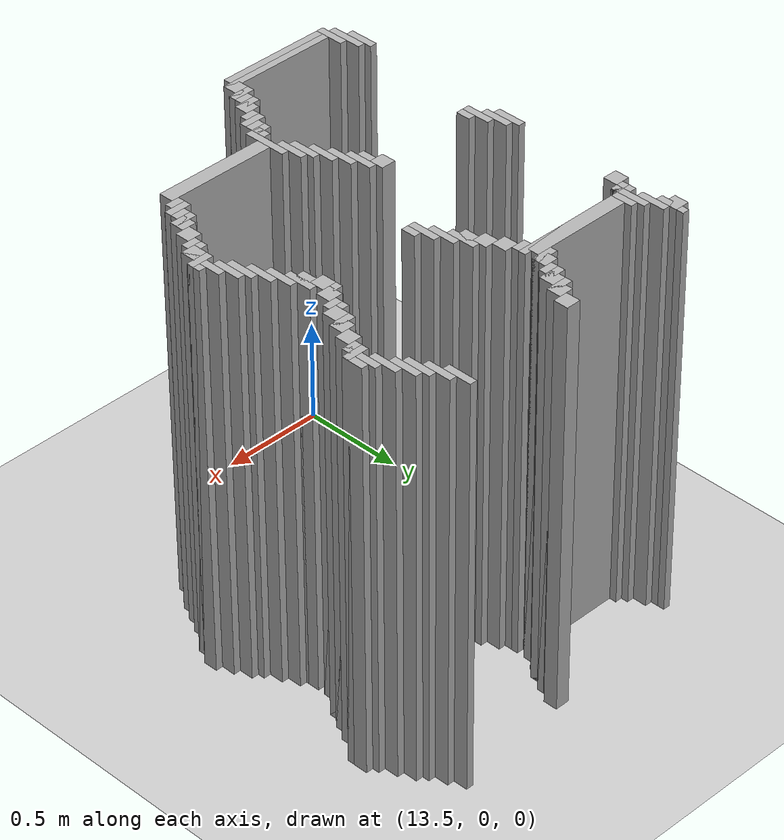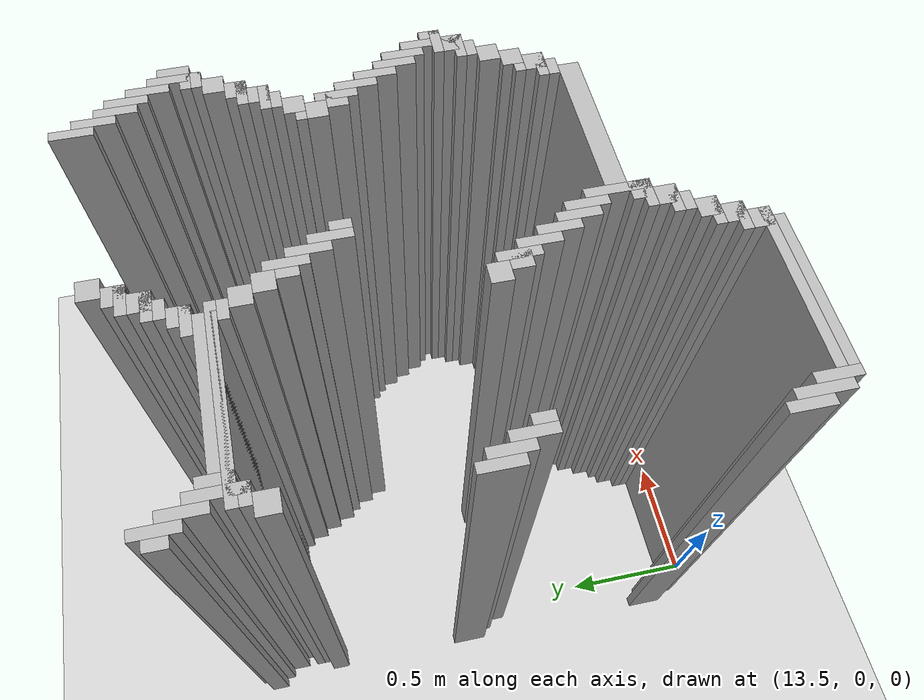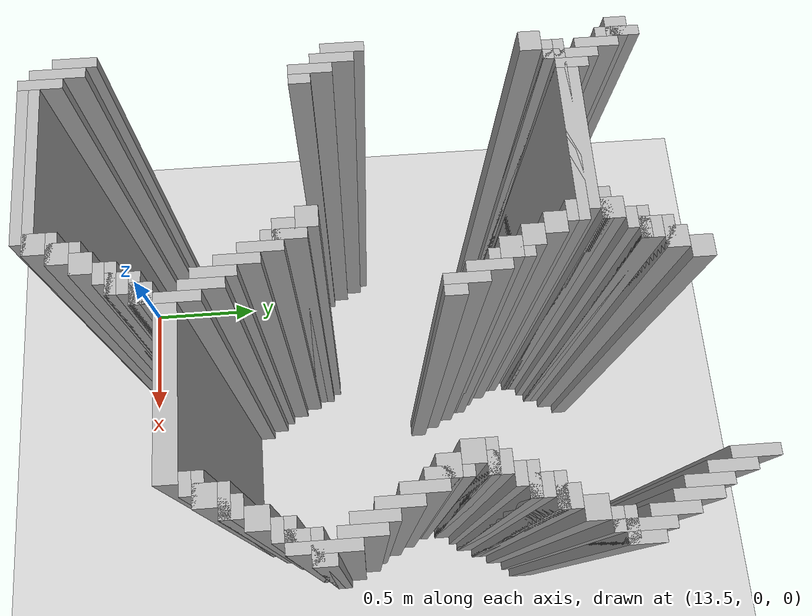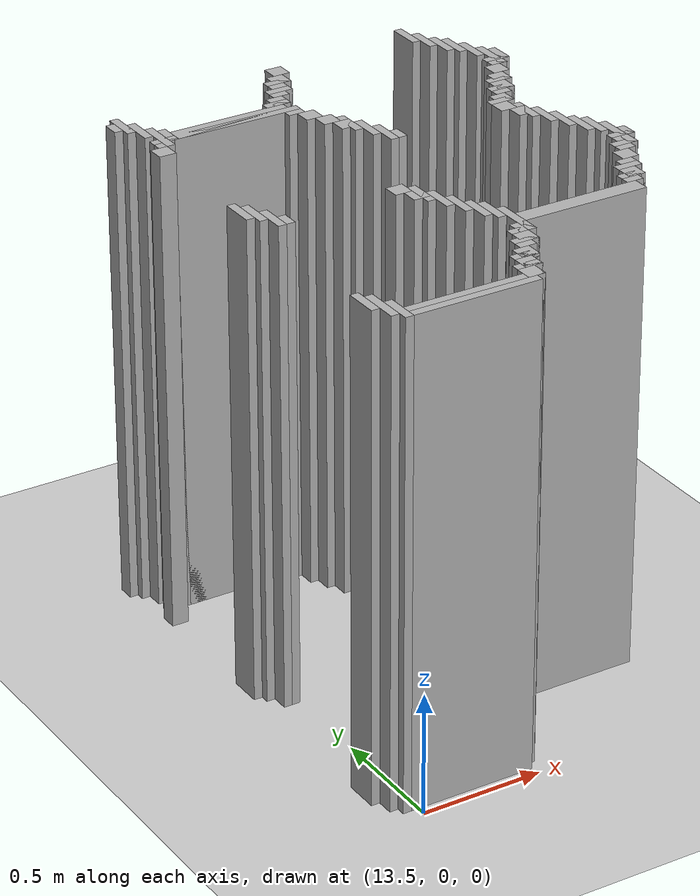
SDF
<sdf version="1.6">
 <world name="slam_world">
  <model name="ground_plane">
   <static>true</static>
   <link name="link">
    <collision name="collision">
     <geometry><plane><normal>0 0 1</normal><size>100 100</size></plane></geometry>
    </collision>
    <visual name="visual">
     <geometry><plane><normal>0 0 1</normal><size>100 100</size></plane></geometry>
     <material>
      <ambient>0.8 0.8 0.8 1</ambient>
      <diffuse>0.8 0.8 0.8 1</diffuse>
      <specular>0.8 0.8 0.8 1</specular>
     </material>
    </visual>
   </link>
  </model>
  <model name="wall_5177">
   <static>true</static>
   <pose>14.738979118329466 2.088167053364269 1.0 0 0 0</pose>
   <link name="link">
    <collision name="collision">
     <geometry><box><size>0.03480278422273782 0.13921113689095127 2.0</size></box></geometry>
    </collision>
    <visual name="visual">
     <geometry><box><size>0.03480278422273782 0.13921113689095127 2.0</size></box></geometry>
     <material><ambient>0.5 0.5 0.5 1</ambient><diffuse>0.7 0.7 0.7 1</diffuse></material>
    </visual>
   </link>
  </model>
  <model name="wall_5206">
   <static>true</static>
   <pose>14.129930394431554 2.053364269141531 1.0 0 0 0</pose>
   <link name="link">
    <collision name="collision">
     <geometry><box><size>0.06960556844547564 0.06960556844547564 2.0</size></box></geometry>
    </collision>
    <visual name="visual">
     <geometry><box><size>0.06960556844547564 0.06960556844547564 2.0</size></box></geometry>
     <material><ambient>0.5 0.5 0.5 1</ambient><diffuse>0.7 0.7 0.7 1</diffuse></material>
    </visual>
   </link>
  </model>
  <model name="wall_5207">
   <static>true</static>
   <pose>14.773781902552203 2.0185614849187936 1.0 0 0 0</pose>
   <link name="link">
    <collision name="collision">
     <geometry><box><size>0.03480278422273782 0.13921113689095127 2.0</size></box></geometry>
    </collision>
    <visual name="visual">
     <geometry><box><size>0.03480278422273782 0.13921113689095127 2.0</size></box></geometry>
     <material><ambient>0.5 0.5 0.5 1</ambient><diffuse>0.7 0.7 0.7 1</diffuse></material>
    </visual>
   </link>
  </model>
  <model name="wall_5221">
   <static>true</static>
   <pose>14.095127610208817 1.9837587006960555 1.0 0 0 0</pose>
   <link name="link">
    <collision name="collision">
     <geometry><box><size>0.06960556844547564 0.06960556844547564 2.0</size></box></geometry>
    </collision>
    <visual name="visual">
     <geometry><box><size>0.06960556844547564 0.06960556844547564 2.0</size></box></geometry>
     <material><ambient>0.5 0.5 0.5 1</ambient><diffuse>0.7 0.7 0.7 1</diffuse></material>
    </visual>
   </link>
  </model>
  <model name="wall_5222">
   <static>true</static>
   <pose>14.80858468677494 1.948955916473318 1.0 0 0 0</pose>
   <link name="link">
    <collision name="collision">
     <geometry><box><size>0.03480278422273782 0.13921113689095127 2.0</size></box></geometry>
    </collision>
    <visual name="visual">
     <geometry><box><size>0.03480278422273782 0.13921113689095127 2.0</size></box></geometry>
     <material><ambient>0.5 0.5 0.5 1</ambient><diffuse>0.7 0.7 0.7 1</diffuse></material>
    </visual>
   </link>
  </model>
  <model name="wall_5235">
   <static>true</static>
   <pose>13.38167053364269 1.91415313225058 1.0 0 0 0</pose>
   <link name="link">
    <collision name="collision">
     <geometry><box><size>0.03480278422273782 0.13921113689095127 2.0</size></box></geometry>
    </collision>
    <visual name="visual">
     <geometry><box><size>0.03480278422273782 0.13921113689095127 2.0</size></box></geometry>
     <material><ambient>0.5 0.5 0.5 1</ambient><diffuse>0.7 0.7 0.7 1</diffuse></material>
    </visual>
   </link>
  </model>
  <model name="wall_5236">
   <static>true</static>
   <pose>14.077726218097448 1.9663573085846866 1.0 0 0 0</pose>
   <link name="link">
    <collision name="collision">
     <geometry><box><size>0.10440835266821345 0.03480278422273782 2.0</size></box></geometry>
    </collision>
    <visual name="visual">
     <geometry><box><size>0.10440835266821345 0.03480278422273782 2.0</size></box></geometry>
     <material><ambient>0.5 0.5 0.5 1</ambient><diffuse>0.7 0.7 0.7 1</diffuse></material>
    </visual>
   </link>
  </model>
  <model name="wall_5237">
   <static>true</static>
   <pose>14.84338747099768 1.91415313225058 1.0 0 0 0</pose>
   <link name="link">
    <collision name="collision">
     <geometry><box><size>0.03480278422273782 0.13921113689095127 2.0</size></box></geometry>
    </collision>
    <visual name="visual">
     <geometry><box><size>0.03480278422273782 0.13921113689095127 2.0</size></box></geometry>
     <material><ambient>0.5 0.5 0.5 1</ambient><diffuse>0.7 0.7 0.7 1</diffuse></material>
    </visual>
   </link>
  </model>
  <model name="wall_5246">
   <static>true</static>
   <pose>13.364269141531322 1.91415313225058 1.0 0 0 0</pose>
   <link name="link">
    <collision name="collision">
     <geometry><box><size>0.06960556844547564 0.06960556844547564 2.0</size></box></geometry>
    </collision>
    <visual name="visual">
     <geometry><box><size>0.06960556844547564 0.06960556844547564 2.0</size></box></geometry>
     <material><ambient>0.5 0.5 0.5 1</ambient><diffuse>0.7 0.7 0.7 1</diffuse></material>
    </visual>
   </link>
  </model>
  <model name="wall_5247">
   <static>true</static>
   <pose>14.06032482598608 1.91415313225058 1.0 0 0 0</pose>
   <link name="link">
    <collision name="collision">
     <geometry><box><size>0.06960556844547564 0.06960556844547564 2.0</size></box></geometry>
    </collision>
    <visual name="visual">
     <geometry><box><size>0.06960556844547564 0.06960556844547564 2.0</size></box></geometry>
     <material><ambient>0.5 0.5 0.5 1</ambient><diffuse>0.7 0.7 0.7 1</diffuse></material>
    </visual>
   </link>
  </model>
  <model name="wall_5260">
   <static>true</static>
   <pose>13.416473317865428 1.8445475638051043 1.0 0 0 0</pose>
   <link name="link">
    <collision name="collision">
     <geometry><box><size>0.03480278422273782 0.13921113689095127 2.0</size></box></geometry>
    </collision>
    <visual name="visual">
     <geometry><box><size>0.03480278422273782 0.13921113689095127 2.0</size></box></geometry>
     <material><ambient>0.5 0.5 0.5 1</ambient><diffuse>0.7 0.7 0.7 1</diffuse></material>
    </visual>
   </link>
  </model>
  <model name="wall_5261">
   <static>true</static>
   <pose>14.042923433874709 1.896751740139211 1.0 0 0 0</pose>
   <link name="link">
    <collision name="collision">
     <geometry><box><size>0.10440835266821345 0.03480278422273782 2.0</size></box></geometry>
    </collision>
    <visual name="visual">
     <geometry><box><size>0.10440835266821345 0.03480278422273782 2.0</size></box></geometry>
     <material><ambient>0.5 0.5 0.5 1</ambient><diffuse>0.7 0.7 0.7 1</diffuse></material>
    </visual>
   </link>
  </model>
  <model name="wall_5262">
   <static>true</static>
   <pose>14.878190255220417 1.8445475638051043 1.0 0 0 0</pose>
   <link name="link">
    <collision name="collision">
     <geometry><box><size>0.03480278422273782 0.13921113689095127 2.0</size></box></geometry>
    </collision>
    <visual name="visual">
     <geometry><box><size>0.03480278422273782 0.13921113689095127 2.0</size></box></geometry>
     <material><ambient>0.5 0.5 0.5 1</ambient><diffuse>0.7 0.7 0.7 1</diffuse></material>
    </visual>
   </link>
  </model>
  <model name="wall_5271">
   <static>true</static>
   <pose>14.02552204176334 1.8619489559164732 1.0 0 0 0</pose>
   <link name="link">
    <collision name="collision">
     <geometry><box><size>0.06960556844547564 0.03480278422273782 2.0</size></box></geometry>
    </collision>
    <visual name="visual">
     <geometry><box><size>0.06960556844547564 0.03480278422273782 2.0</size></box></geometry>
     <material><ambient>0.5 0.5 0.5 1</ambient><diffuse>0.7 0.7 0.7 1</diffuse></material>
    </visual>
   </link>
  </model>
  <model name="wall_5284">
   <static>true</static>
   <pose>13.451276102088167 1.75754060324826 1.0 0 0 0</pose>
   <link name="link">
    <collision name="collision">
     <geometry><box><size>0.03480278422273782 0.17401392111368907 2.0</size></box></geometry>
    </collision>
    <visual name="visual">
     <geometry><box><size>0.03480278422273782 0.17401392111368907 2.0</size></box></geometry>
     <material><ambient>0.5 0.5 0.5 1</ambient><diffuse>0.7 0.7 0.7 1</diffuse></material>
    </visual>
   </link>
  </model>
  <model name="wall_5285">
   <static>true</static>
   <pose>13.990719257540603 1.8097447795823665 1.0 0 0 0</pose>
   <link name="link">
    <collision name="collision">
     <geometry><box><size>0.06960556844547564 0.06960556844547564 2.0</size></box></geometry>
    </collision>
    <visual name="visual">
     <geometry><box><size>0.06960556844547564 0.06960556844547564 2.0</size></box></geometry>
     <material><ambient>0.5 0.5 0.5 1</ambient><diffuse>0.7 0.7 0.7 1</diffuse></material>
    </visual>
   </link>
  </model>
  <model name="wall_5286">
   <static>true</static>
   <pose>14.912993039443155 1.75754060324826 1.0 0 0 0</pose>
   <link name="link">
    <collision name="collision">
     <geometry><box><size>0.03480278422273782 0.17401392111368907 2.0</size></box></geometry>
    </collision>
    <visual name="visual">
     <geometry><box><size>0.03480278422273782 0.17401392111368907 2.0</size></box></geometry>
     <material><ambient>0.5 0.5 0.5 1</ambient><diffuse>0.7 0.7 0.7 1</diffuse></material>
    </visual>
   </link>
  </model>
  <model name="wall_5299">
   <static>true</static>
   <pose>13.486078886310905 1.75754060324826 1.0 0 0 0</pose>
   <link name="link">
    <collision name="collision">
     <geometry><box><size>0.03480278422273782 0.10440835266821345 2.0</size></box></geometry>
    </collision>
    <visual name="visual">
     <geometry><box><size>0.03480278422273782 0.10440835266821345 2.0</size></box></geometry>
     <material><ambient>0.5 0.5 0.5 1</ambient><diffuse>0.7 0.7 0.7 1</diffuse></material>
    </visual>
   </link>
  </model>
  <model name="wall_5300">
   <static>true</static>
   <pose>13.973317865429234 1.7923433874709975 1.0 0 0 0</pose>
   <link name="link">
    <collision name="collision">
     <geometry><box><size>0.10440835266821345 0.03480278422273782 2.0</size></box></geometry>
    </collision>
    <visual name="visual">
     <geometry><box><size>0.10440835266821345 0.03480278422273782 2.0</size></box></geometry>
     <material><ambient>0.5 0.5 0.5 1</ambient><diffuse>0.7 0.7 0.7 1</diffuse></material>
    </visual>
   </link>
  </model>
  <model name="wall_5301">
   <static>true</static>
   <pose>14.947795823665892 1.75754060324826 1.0 0 0 0</pose>
   <link name="link">
    <collision name="collision">
     <geometry><box><size>0.03480278422273782 0.10440835266821345 2.0</size></box></geometry>
    </collision>
    <visual name="visual">
     <geometry><box><size>0.03480278422273782 0.10440835266821345 2.0</size></box></geometry>
     <material><ambient>0.5 0.5 0.5 1</ambient><diffuse>0.7 0.7 0.7 1</diffuse></material>
    </visual>
   </link>
  </model>
  <model name="wall_5313">
   <static>true</static>
   <pose>13.747099767981437 1.740139211136891 1.0 0 0 0</pose>
   <link name="link">
    <collision name="collision">
     <geometry><box><size>0.4872389791183295 0.06960556844547564 2.0</size></box></geometry>
    </collision>
    <visual name="visual">
     <geometry><box><size>0.4872389791183295 0.06960556844547564 2.0</size></box></geometry>
     <material><ambient>0.5 0.5 0.5 1</ambient><diffuse>0.7 0.7 0.7 1</diffuse></material>
    </visual>
   </link>
  </model>
  <model name="wall_5325">
   <static>true</static>
   <pose>13.7122969837587 1.722737819025522 1.0 0 0 0</pose>
   <link name="link">
    <collision name="collision">
     <geometry><box><size>0.6264501160092807 0.03480278422273782 2.0</size></box></geometry>
    </collision>
    <visual name="visual">
     <geometry><box><size>0.6264501160092807 0.03480278422273782 2.0</size></box></geometry>
     <material><ambient>0.5 0.5 0.5 1</ambient><diffuse>0.7 0.7 0.7 1</diffuse></material>
    </visual>
   </link>
  </model>
  <model name="wall_5326">
   <static>true</static>
   <pose>14.912993039443155 1.722737819025522 1.0 0 0 0</pose>
   <link name="link">
    <collision name="collision">
     <geometry><box><size>0.10440835266821345 0.03480278422273782 2.0</size></box></geometry>
    </collision>
    <visual name="visual">
     <geometry><box><size>0.10440835266821345 0.03480278422273782 2.0</size></box></geometry>
     <material><ambient>0.5 0.5 0.5 1</ambient><diffuse>0.7 0.7 0.7 1</diffuse></material>
    </visual>
   </link>
  </model>
  <model name="wall_5337">
   <static>true</static>
   <pose>13.433874709976797 1.6879350348027842 1.0 0 0 0</pose>
   <link name="link">
    <collision name="collision">
     <geometry><box><size>0.06960556844547564 0.03480278422273782 2.0</size></box></geometry>
    </collision>
    <visual name="visual">
     <geometry><box><size>0.06960556844547564 0.03480278422273782 2.0</size></box></geometry>
     <material><ambient>0.5 0.5 0.5 1</ambient><diffuse>0.7 0.7 0.7 1</diffuse></material>
    </visual>
   </link>
  </model>
  <model name="wall_5338">
   <static>true</static>
   <pose>13.990719257540603 1.6879350348027842 1.0 0 0 0</pose>
   <link name="link">
    <collision name="collision">
     <geometry><box><size>0.06960556844547564 0.03480278422273782 2.0</size></box></geometry>
    </collision>
    <visual name="visual">
     <geometry><box><size>0.06960556844547564 0.03480278422273782 2.0</size></box></geometry>
     <material><ambient>0.5 0.5 0.5 1</ambient><diffuse>0.7 0.7 0.7 1</diffuse></material>
    </visual>
   </link>
  </model>
  <model name="wall_5339">
   <static>true</static>
   <pose>14.895591647331786 1.6879350348027842 1.0 0 0 0</pose>
   <link name="link">
    <collision name="collision">
     <geometry><box><size>0.06960556844547564 0.03480278422273782 2.0</size></box></geometry>
    </collision>
    <visual name="visual">
     <geometry><box><size>0.06960556844547564 0.03480278422273782 2.0</size></box></geometry>
     <material><ambient>0.5 0.5 0.5 1</ambient><diffuse>0.7 0.7 0.7 1</diffuse></material>
    </visual>
   </link>
  </model>
  <model name="wall_5350">
   <static>true</static>
   <pose>13.39907192575406 1.6357308584686774 1.0 0 0 0</pose>
   <link name="link">
    <collision name="collision">
     <geometry><box><size>0.06960556844547564 0.06960556844547564 2.0</size></box></geometry>
    </collision>
    <visual name="visual">
     <geometry><box><size>0.06960556844547564 0.06960556844547564 2.0</size></box></geometry>
     <material><ambient>0.5 0.5 0.5 1</ambient><diffuse>0.7 0.7 0.7 1</diffuse></material>
    </visual>
   </link>
  </model>
  <model name="wall_5351">
   <static>true</static>
   <pose>14.02552204176334 1.6357308584686774 1.0 0 0 0</pose>
   <link name="link">
    <collision name="collision">
     <geometry><box><size>0.06960556844547564 0.06960556844547564 2.0</size></box></geometry>
    </collision>
    <visual name="visual">
     <geometry><box><size>0.06960556844547564 0.06960556844547564 2.0</size></box></geometry>
     <material><ambient>0.5 0.5 0.5 1</ambient><diffuse>0.7 0.7 0.7 1</diffuse></material>
    </visual>
   </link>
  </model>
  <model name="wall_5352">
   <static>true</static>
   <pose>14.860788863109049 1.6357308584686774 1.0 0 0 0</pose>
   <link name="link">
    <collision name="collision">
     <geometry><box><size>0.06960556844547564 0.06960556844547564 2.0</size></box></geometry>
    </collision>
    <visual name="visual">
     <geometry><box><size>0.06960556844547564 0.06960556844547564 2.0</size></box></geometry>
     <material><ambient>0.5 0.5 0.5 1</ambient><diffuse>0.7 0.7 0.7 1</diffuse></material>
    </visual>
   </link>
  </model>
  <model name="wall_5364">
   <static>true</static>
   <pose>14.06032482598608 1.5661252900232019 1.0 0 0 0</pose>
   <link name="link">
    <collision name="collision">
     <geometry><box><size>0.06960556844547564 0.06960556844547564 2.0</size></box></geometry>
    </collision>
    <visual name="visual">
     <geometry><box><size>0.06960556844547564 0.06960556844547564 2.0</size></box></geometry>
     <material><ambient>0.5 0.5 0.5 1</ambient><diffuse>0.7 0.7 0.7 1</diffuse></material>
    </visual>
   </link>
  </model>
  <model name="wall_5365">
   <static>true</static>
   <pose>14.825986078886311 1.5661252900232019 1.0 0 0 0</pose>
   <link name="link">
    <collision name="collision">
     <geometry><box><size>0.06960556844547564 0.06960556844547564 2.0</size></box></geometry>
    </collision>
    <visual name="visual">
     <geometry><box><size>0.06960556844547564 0.06960556844547564 2.0</size></box></geometry>
     <material><ambient>0.5 0.5 0.5 1</ambient><diffuse>0.7 0.7 0.7 1</diffuse></material>
    </visual>
   </link>
  </model>
  <model name="wall_5377">
   <static>true</static>
   <pose>14.112529002320185 1.4965197215777262 1.0 0 0 0</pose>
   <link name="link">
    <collision name="collision">
     <geometry><box><size>0.03480278422273782 0.13921113689095127 2.0</size></box></geometry>
    </collision>
    <visual name="visual">
     <geometry><box><size>0.03480278422273782 0.13921113689095127 2.0</size></box></geometry>
     <material><ambient>0.5 0.5 0.5 1</ambient><diffuse>0.7 0.7 0.7 1</diffuse></material>
    </visual>
   </link>
  </model>
  <model name="wall_5378">
   <static>true</static>
   <pose>14.80858468677494 1.548723897911833 1.0 0 0 0</pose>
   <link name="link">
    <collision name="collision">
     <geometry><box><size>0.10440835266821345 0.03480278422273782 2.0</size></box></geometry>
    </collision>
    <visual name="visual">
     <geometry><box><size>0.10440835266821345 0.03480278422273782 2.0</size></box></geometry>
     <material><ambient>0.5 0.5 0.5 1</ambient><diffuse>0.7 0.7 0.7 1</diffuse></material>
    </visual>
   </link>
  </model>
  <model name="wall_5386">
   <static>true</static>
   <pose>14.095127610208817 1.4965197215777262 1.0 0 0 0</pose>
   <link name="link">
    <collision name="collision">
     <geometry><box><size>0.06960556844547564 0.06960556844547564 2.0</size></box></geometry>
    </collision>
    <visual name="visual">
     <geometry><box><size>0.06960556844547564 0.06960556844547564 2.0</size></box></geometry>
     <material><ambient>0.5 0.5 0.5 1</ambient><diffuse>0.7 0.7 0.7 1</diffuse></material>
    </visual>
   </link>
  </model>
  <model name="wall_5387">
   <static>true</static>
   <pose>14.791183294663572 1.4965197215777262 1.0 0 0 0</pose>
   <link name="link">
    <collision name="collision">
     <geometry><box><size>0.06960556844547564 0.06960556844547564 2.0</size></box></geometry>
    </collision>
    <visual name="visual">
     <geometry><box><size>0.06960556844547564 0.06960556844547564 2.0</size></box></geometry>
     <material><ambient>0.5 0.5 0.5 1</ambient><diffuse>0.7 0.7 0.7 1</diffuse></material>
    </visual>
   </link>
  </model>
  <model name="wall_5399">
   <static>true</static>
   <pose>14.147331786542923 1.4269141531322505 1.0 0 0 0</pose>
   <link name="link">
    <collision name="collision">
     <geometry><box><size>0.03480278422273782 0.13921113689095127 2.0</size></box></geometry>
    </collision>
    <visual name="visual">
     <geometry><box><size>0.03480278422273782 0.13921113689095127 2.0</size></box></geometry>
     <material><ambient>0.5 0.5 0.5 1</ambient><diffuse>0.7 0.7 0.7 1</diffuse></material>
    </visual>
   </link>
  </model>
  <model name="wall_5400">
   <static>true</static>
   <pose>14.773781902552203 1.4791183294663572 1.0 0 0 0</pose>
   <link name="link">
    <collision name="collision">
     <geometry><box><size>0.10440835266821345 0.03480278422273782 2.0</size></box></geometry>
    </collision>
    <visual name="visual">
     <geometry><box><size>0.10440835266821345 0.03480278422273782 2.0</size></box></geometry>
     <material><ambient>0.5 0.5 0.5 1</ambient><diffuse>0.7 0.7 0.7 1</diffuse></material>
    </visual>
   </link>
  </model>
  <model name="wall_5407">
   <static>true</static>
   <pose>14.756380510440835 1.4443155452436194 1.0 0 0 0</pose>
   <link name="link">
    <collision name="collision">
     <geometry><box><size>0.06960556844547564 0.03480278422273782 2.0</size></box></geometry>
    </collision>
    <visual name="visual">
     <geometry><box><size>0.06960556844547564 0.03480278422273782 2.0</size></box></geometry>
     <material><ambient>0.5 0.5 0.5 1</ambient><diffuse>0.7 0.7 0.7 1</diffuse></material>
    </visual>
   </link>
  </model>
  <model name="wall_5419">
   <static>true</static>
   <pose>14.18213457076566 1.357308584686775 1.0 0 0 0</pose>
   <link name="link">
    <collision name="collision">
     <geometry><box><size>0.03480278422273782 0.13921113689095127 2.0</size></box></geometry>
    </collision>
    <visual name="visual">
     <geometry><box><size>0.03480278422273782 0.13921113689095127 2.0</size></box></geometry>
     <material><ambient>0.5 0.5 0.5 1</ambient><diffuse>0.7 0.7 0.7 1</diffuse></material>
    </visual>
   </link>
  </model>
  <model name="wall_5420">
   <static>true</static>
   <pose>14.721577726218097 1.3921113689095126 1.0 0 0 0</pose>
   <link name="link">
    <collision name="collision">
     <geometry><box><size>0.06960556844547564 0.06960556844547564 2.0</size></box></geometry>
    </collision>
    <visual name="visual">
     <geometry><box><size>0.06960556844547564 0.06960556844547564 2.0</size></box></geometry>
     <material><ambient>0.5 0.5 0.5 1</ambient><diffuse>0.7 0.7 0.7 1</diffuse></material>
    </visual>
   </link>
  </model>
  <model name="wall_5430">
   <static>true</static>
   <pose>14.704176334106728 1.3747099767981439 1.0 0 0 0</pose>
   <link name="link">
    <collision name="collision">
     <geometry><box><size>0.10440835266821345 0.03480278422273782 2.0</size></box></geometry>
    </collision>
    <visual name="visual">
     <geometry><box><size>0.10440835266821345 0.03480278422273782 2.0</size></box></geometry>
     <material><ambient>0.5 0.5 0.5 1</ambient><diffuse>0.7 0.7 0.7 1</diffuse></material>
    </visual>
   </link>
  </model>
  <model name="wall_5441">
   <static>true</static>
   <pose>14.2169373549884 1.322505800464037 1.0 0 0 0</pose>
   <link name="link">
    <collision name="collision">
     <geometry><box><size>0.03480278422273782 0.06960556844547564 2.0</size></box></geometry>
    </collision>
    <visual name="visual">
     <geometry><box><size>0.03480278422273782 0.06960556844547564 2.0</size></box></geometry>
     <material><ambient>0.5 0.5 0.5 1</ambient><diffuse>0.7 0.7 0.7 1</diffuse></material>
    </visual>
   </link>
  </model>
  <model name="wall_5442">
   <static>true</static>
   <pose>14.68677494199536 1.322505800464037 1.0 0 0 0</pose>
   <link name="link">
    <collision name="collision">
     <geometry><box><size>0.06960556844547564 0.06960556844547564 2.0</size></box></geometry>
    </collision>
    <visual name="visual">
     <geometry><box><size>0.06960556844547564 0.06960556844547564 2.0</size></box></geometry>
     <material><ambient>0.5 0.5 0.5 1</ambient><diffuse>0.7 0.7 0.7 1</diffuse></material>
    </visual>
   </link>
  </model>
  <model name="wall_5454">
   <static>true</static>
   <pose>14.738979118329466 1.2529002320185614 1.0 0 0 0</pose>
   <link name="link">
    <collision name="collision">
     <geometry><box><size>0.03480278422273782 0.13921113689095127 2.0</size></box></geometry>
    </collision>
    <visual name="visual">
     <geometry><box><size>0.03480278422273782 0.13921113689095127 2.0</size></box></geometry>
     <material><ambient>0.5 0.5 0.5 1</ambient><diffuse>0.7 0.7 0.7 1</diffuse></material>
    </visual>
   </link>
  </model>
  <model name="wall_5469">
   <static>true</static>
   <pose>14.721577726218097 1.2529002320185614 1.0 0 0 0</pose>
   <link name="link">
    <collision name="collision">
     <geometry><box><size>0.06960556844547564 0.06960556844547564 2.0</size></box></geometry>
    </collision>
    <visual name="visual">
     <geometry><box><size>0.06960556844547564 0.06960556844547564 2.0</size></box></geometry>
     <material><ambient>0.5 0.5 0.5 1</ambient><diffuse>0.7 0.7 0.7 1</diffuse></material>
    </visual>
   </link>
  </model>
  <model name="wall_5484">
   <static>true</static>
   <pose>14.773781902552203 1.1832946635730859 1.0 0 0 0</pose>
   <link name="link">
    <collision name="collision">
     <geometry><box><size>0.03480278422273782 0.13921113689095127 2.0</size></box></geometry>
    </collision>
    <visual name="visual">
     <geometry><box><size>0.03480278422273782 0.13921113689095127 2.0</size></box></geometry>
     <material><ambient>0.5 0.5 0.5 1</ambient><diffuse>0.7 0.7 0.7 1</diffuse></material>
    </visual>
   </link>
  </model>
  <model name="wall_5511">
   <static>true</static>
   <pose>14.80858468677494 1.1136890951276102 1.0 0 0 0</pose>
   <link name="link">
    <collision name="collision">
     <geometry><box><size>0.03480278422273782 0.13921113689095127 2.0</size></box></geometry>
    </collision>
    <visual name="visual">
     <geometry><box><size>0.03480278422273782 0.13921113689095127 2.0</size></box></geometry>
     <material><ambient>0.5 0.5 0.5 1</ambient><diffuse>0.7 0.7 0.7 1</diffuse></material>
    </visual>
   </link>
  </model>
  <model name="wall_5525">
   <static>true</static>
   <pose>13.38167053364269 1.0440835266821344 1.0 0 0 0</pose>
   <link name="link">
    <collision name="collision">
     <geometry><box><size>0.03480278422273782 0.13921113689095127 2.0</size></box></geometry>
    </collision>
    <visual name="visual">
     <geometry><box><size>0.03480278422273782 0.13921113689095127 2.0</size></box></geometry>
     <material><ambient>0.5 0.5 0.5 1</ambient><diffuse>0.7 0.7 0.7 1</diffuse></material>
    </visual>
   </link>
  </model>
  <model name="wall_5526">
   <static>true</static>
   <pose>14.84338747099768 1.0440835266821344 1.0 0 0 0</pose>
   <link name="link">
    <collision name="collision">
     <geometry><box><size>0.03480278422273782 0.13921113689095127 2.0</size></box></geometry>
    </collision>
    <visual name="visual">
     <geometry><box><size>0.03480278422273782 0.13921113689095127 2.0</size></box></geometry>
     <material><ambient>0.5 0.5 0.5 1</ambient><diffuse>0.7 0.7 0.7 1</diffuse></material>
    </visual>
   </link>
  </model>
  <model name="wall_5540">
   <static>true</static>
   <pose>13.416473317865428 1.0092807424593968 1.0 0 0 0</pose>
   <link name="link">
    <collision name="collision">
     <geometry><box><size>0.03480278422273782 0.13921113689095127 2.0</size></box></geometry>
    </collision>
    <visual name="visual">
     <geometry><box><size>0.03480278422273782 0.13921113689095127 2.0</size></box></geometry>
     <material><ambient>0.5 0.5 0.5 1</ambient><diffuse>0.7 0.7 0.7 1</diffuse></material>
    </visual>
   </link>
  </model>
  <model name="wall_5541">
   <static>true</static>
   <pose>14.878190255220417 1.0092807424593968 1.0 0 0 0</pose>
   <link name="link">
    <collision name="collision">
     <geometry><box><size>0.03480278422273782 0.13921113689095127 2.0</size></box></geometry>
    </collision>
    <visual name="visual">
     <geometry><box><size>0.03480278422273782 0.13921113689095127 2.0</size></box></geometry>
     <material><ambient>0.5 0.5 0.5 1</ambient><diffuse>0.7 0.7 0.7 1</diffuse></material>
    </visual>
   </link>
  </model>
  <model name="wall_5564">
   <static>true</static>
   <pose>13.451276102088167 0.9396751740139211 1.0 0 0 0</pose>
   <link name="link">
    <collision name="collision">
     <geometry><box><size>0.03480278422273782 0.13921113689095127 2.0</size></box></geometry>
    </collision>
    <visual name="visual">
     <geometry><box><size>0.03480278422273782 0.13921113689095127 2.0</size></box></geometry>
     <material><ambient>0.5 0.5 0.5 1</ambient><diffuse>0.7 0.7 0.7 1</diffuse></material>
    </visual>
   </link>
  </model>
  <model name="wall_5565">
   <static>true</static>
   <pose>14.912993039443155 0.9048723897911832 1.0 0 0 0</pose>
   <link name="link">
    <collision name="collision">
     <geometry><box><size>0.03480278422273782 0.2088167053364269 2.0</size></box></geometry>
    </collision>
    <visual name="visual">
     <geometry><box><size>0.03480278422273782 0.2088167053364269 2.0</size></box></geometry>
     <material><ambient>0.5 0.5 0.5 1</ambient><diffuse>0.7 0.7 0.7 1</diffuse></material>
    </visual>
   </link>
  </model>
  <model name="wall_5585">
   <static>true</static>
   <pose>13.486078886310905 0.9048723897911832 1.0 0 0 0</pose>
   <link name="link">
    <collision name="collision">
     <geometry><box><size>0.03480278422273782 0.06960556844547564 2.0</size></box></geometry>
    </collision>
    <visual name="visual">
     <geometry><box><size>0.03480278422273782 0.06960556844547564 2.0</size></box></geometry>
     <material><ambient>0.5 0.5 0.5 1</ambient><diffuse>0.7 0.7 0.7 1</diffuse></material>
    </visual>
   </link>
  </model>
  <model name="wall_5586">
   <static>true</static>
   <pose>13.955916473317865 0.9048723897911832 1.0 0 0 0</pose>
   <link name="link">
    <collision name="collision">
     <geometry><box><size>0.06960556844547564 0.06960556844547564 2.0</size></box></geometry>
    </collision>
    <visual name="visual">
     <geometry><box><size>0.06960556844547564 0.06960556844547564 2.0</size></box></geometry>
     <material><ambient>0.5 0.5 0.5 1</ambient><diffuse>0.7 0.7 0.7 1</diffuse></material>
    </visual>
   </link>
  </model>
  <model name="wall_5587">
   <static>true</static>
   <pose>14.947795823665892 0.9048723897911832 1.0 0 0 0</pose>
   <link name="link">
    <collision name="collision">
     <geometry><box><size>0.03480278422273782 0.06960556844547564 2.0</size></box></geometry>
    </collision>
    <visual name="visual">
     <geometry><box><size>0.03480278422273782 0.06960556844547564 2.0</size></box></geometry>
     <material><ambient>0.5 0.5 0.5 1</ambient><diffuse>0.7 0.7 0.7 1</diffuse></material>
    </visual>
   </link>
  </model>
  <model name="wall_5593">
   <static>true</static>
   <pose>14.008120649651971 0.8352668213457076 1.0 0 0 0</pose>
   <link name="link">
    <collision name="collision">
     <geometry><box><size>0.03480278422273782 0.13921113689095127 2.0</size></box></geometry>
    </collision>
    <visual name="visual">
     <geometry><box><size>0.03480278422273782 0.13921113689095127 2.0</size></box></geometry>
     <material><ambient>0.5 0.5 0.5 1</ambient><diffuse>0.7 0.7 0.7 1</diffuse></material>
    </visual>
   </link>
  </model>
  <model name="wall_5594">
   <static>true</static>
   <pose>14.912993039443155 0.8874709976798143 1.0 0 0 0</pose>
   <link name="link">
    <collision name="collision">
     <geometry><box><size>0.10440835266821345 0.03480278422273782 2.0</size></box></geometry>
    </collision>
    <visual name="visual">
     <geometry><box><size>0.10440835266821345 0.03480278422273782 2.0</size></box></geometry>
     <material><ambient>0.5 0.5 0.5 1</ambient><diffuse>0.7 0.7 0.7 1</diffuse></material>
    </visual>
   </link>
  </model>
  <model name="wall_5600">
   <static>true</static>
   <pose>13.990719257540603 0.8352668213457076 1.0 0 0 0</pose>
   <link name="link">
    <collision name="collision">
     <geometry><box><size>0.06960556844547564 0.06960556844547564 2.0</size></box></geometry>
    </collision>
    <visual name="visual">
     <geometry><box><size>0.06960556844547564 0.06960556844547564 2.0</size></box></geometry>
     <material><ambient>0.5 0.5 0.5 1</ambient><diffuse>0.7 0.7 0.7 1</diffuse></material>
    </visual>
   </link>
  </model>
  <model name="wall_5601">
   <static>true</static>
   <pose>14.895591647331786 0.8352668213457076 1.0 0 0 0</pose>
   <link name="link">
    <collision name="collision">
     <geometry><box><size>0.06960556844547564 0.06960556844547564 2.0</size></box></geometry>
    </collision>
    <visual name="visual">
     <geometry><box><size>0.06960556844547564 0.06960556844547564 2.0</size></box></geometry>
     <material><ambient>0.5 0.5 0.5 1</ambient><diffuse>0.7 0.7 0.7 1</diffuse></material>
    </visual>
   </link>
  </model>
  <model name="wall_5607">
   <static>true</static>
   <pose>14.042923433874709 0.765661252900232 1.0 0 0 0</pose>
   <link name="link">
    <collision name="collision">
     <geometry><box><size>0.03480278422273782 0.13921113689095127 2.0</size></box></geometry>
    </collision>
    <visual name="visual">
     <geometry><box><size>0.03480278422273782 0.13921113689095127 2.0</size></box></geometry>
     <material><ambient>0.5 0.5 0.5 1</ambient><diffuse>0.7 0.7 0.7 1</diffuse></material>
    </visual>
   </link>
  </model>
  <model name="wall_5608">
   <static>true</static>
   <pose>14.878190255220417 0.8178654292343387 1.0 0 0 0</pose>
   <link name="link">
    <collision name="collision">
     <geometry><box><size>0.10440835266821345 0.03480278422273782 2.0</size></box></geometry>
    </collision>
    <visual name="visual">
     <geometry><box><size>0.10440835266821345 0.03480278422273782 2.0</size></box></geometry>
     <material><ambient>0.5 0.5 0.5 1</ambient><diffuse>0.7 0.7 0.7 1</diffuse></material>
    </visual>
   </link>
  </model>
  <model name="wall_5612">
   <static>true</static>
   <pose>14.860788863109049 0.7830626450116009 1.0 0 0 0</pose>
   <link name="link">
    <collision name="collision">
     <geometry><box><size>0.06960556844547564 0.03480278422273782 2.0</size></box></geometry>
    </collision>
    <visual name="visual">
     <geometry><box><size>0.06960556844547564 0.03480278422273782 2.0</size></box></geometry>
     <material><ambient>0.5 0.5 0.5 1</ambient><diffuse>0.7 0.7 0.7 1</diffuse></material>
    </visual>
   </link>
  </model>
  <model name="wall_5618">
   <static>true</static>
   <pose>14.077726218097448 0.6960556844547563 1.0 0 0 0</pose>
   <link name="link">
    <collision name="collision">
     <geometry><box><size>0.03480278422273782 0.13921113689095127 2.0</size></box></geometry>
    </collision>
    <visual name="visual">
     <geometry><box><size>0.03480278422273782 0.13921113689095127 2.0</size></box></geometry>
     <material><ambient>0.5 0.5 0.5 1</ambient><diffuse>0.7 0.7 0.7 1</diffuse></material>
    </visual>
   </link>
  </model>
  <model name="wall_5619">
   <static>true</static>
   <pose>14.825986078886311 0.7308584686774942 1.0 0 0 0</pose>
   <link name="link">
    <collision name="collision">
     <geometry><box><size>0.06960556844547564 0.06960556844547564 2.0</size></box></geometry>
    </collision>
    <visual name="visual">
     <geometry><box><size>0.06960556844547564 0.06960556844547564 2.0</size></box></geometry>
     <material><ambient>0.5 0.5 0.5 1</ambient><diffuse>0.7 0.7 0.7 1</diffuse></material>
    </visual>
   </link>
  </model>
  <model name="wall_5625">
   <static>true</static>
   <pose>14.112529002320185 0.6264501160092807 1.0 0 0 0</pose>
   <link name="link">
    <collision name="collision">
     <geometry><box><size>0.03480278422273782 0.13921113689095127 2.0</size></box></geometry>
    </collision>
    <visual name="visual">
     <geometry><box><size>0.03480278422273782 0.13921113689095127 2.0</size></box></geometry>
     <material><ambient>0.5 0.5 0.5 1</ambient><diffuse>0.7 0.7 0.7 1</diffuse></material>
    </visual>
   </link>
  </model>
  <model name="wall_5626">
   <static>true</static>
   <pose>14.791183294663572 0.6612529002320185 1.0 0 0 0</pose>
   <link name="link">
    <collision name="collision">
     <geometry><box><size>0.06960556844547564 0.06960556844547564 2.0</size></box></geometry>
    </collision>
    <visual name="visual">
     <geometry><box><size>0.06960556844547564 0.06960556844547564 2.0</size></box></geometry>
     <material><ambient>0.5 0.5 0.5 1</ambient><diffuse>0.7 0.7 0.7 1</diffuse></material>
    </visual>
   </link>
  </model>
  <model name="wall_5632">
   <static>true</static>
   <pose>14.147331786542923 0.5916473317865429 1.0 0 0 0</pose>
   <link name="link">
    <collision name="collision">
     <geometry><box><size>0.03480278422273782 0.13921113689095127 2.0</size></box></geometry>
    </collision>
    <visual name="visual">
     <geometry><box><size>0.03480278422273782 0.13921113689095127 2.0</size></box></geometry>
     <material><ambient>0.5 0.5 0.5 1</ambient><diffuse>0.7 0.7 0.7 1</diffuse></material>
    </visual>
   </link>
  </model>
  <model name="wall_5633">
   <static>true</static>
   <pose>14.773781902552203 0.6438515081206496 1.0 0 0 0</pose>
   <link name="link">
    <collision name="collision">
     <geometry><box><size>0.10440835266821345 0.03480278422273782 2.0</size></box></geometry>
    </collision>
    <visual name="visual">
     <geometry><box><size>0.10440835266821345 0.03480278422273782 2.0</size></box></geometry>
     <material><ambient>0.5 0.5 0.5 1</ambient><diffuse>0.7 0.7 0.7 1</diffuse></material>
    </visual>
   </link>
  </model>
  <model name="wall_5637">
   <static>true</static>
   <pose>14.756380510440835 0.5916473317865429 1.0 0 0 0</pose>
   <link name="link">
    <collision name="collision">
     <geometry><box><size>0.06960556844547564 0.06960556844547564 2.0</size></box></geometry>
    </collision>
    <visual name="visual">
     <geometry><box><size>0.06960556844547564 0.06960556844547564 2.0</size></box></geometry>
     <material><ambient>0.5 0.5 0.5 1</ambient><diffuse>0.7 0.7 0.7 1</diffuse></material>
    </visual>
   </link>
  </model>
  <model name="wall_5643">
   <static>true</static>
   <pose>14.18213457076566 0.4872389791183295 1.0 0 0 0</pose>
   <link name="link">
    <collision name="collision">
     <geometry><box><size>0.03480278422273782 0.2088167053364269 2.0</size></box></geometry>
    </collision>
    <visual name="visual">
     <geometry><box><size>0.03480278422273782 0.2088167053364269 2.0</size></box></geometry>
     <material><ambient>0.5 0.5 0.5 1</ambient><diffuse>0.7 0.7 0.7 1</diffuse></material>
    </visual>
   </link>
  </model>
  <model name="wall_5644">
   <static>true</static>
   <pose>14.738979118329466 0.574245939675174 1.0 0 0 0</pose>
   <link name="link">
    <collision name="collision">
     <geometry><box><size>0.10440835266821345 0.03480278422273782 2.0</size></box></geometry>
    </collision>
    <visual name="visual">
     <geometry><box><size>0.10440835266821345 0.03480278422273782 2.0</size></box></geometry>
     <material><ambient>0.5 0.5 0.5 1</ambient><diffuse>0.7 0.7 0.7 1</diffuse></material>
    </visual>
   </link>
  </model>
  <model name="wall_5648">
   <static>true</static>
   <pose>14.721577726218097 0.5394431554524362 1.0 0 0 0</pose>
   <link name="link">
    <collision name="collision">
     <geometry><box><size>0.06960556844547564 0.03480278422273782 2.0</size></box></geometry>
    </collision>
    <visual name="visual">
     <geometry><box><size>0.06960556844547564 0.03480278422273782 2.0</size></box></geometry>
     <material><ambient>0.5 0.5 0.5 1</ambient><diffuse>0.7 0.7 0.7 1</diffuse></material>
    </visual>
   </link>
  </model>
  <model name="wall_5659">
   <static>true</static>
   <pose>14.460556844547563 0.4872389791183295 1.0 0 0 0</pose>
   <link name="link">
    <collision name="collision">
     <geometry><box><size>0.5220417633410672 0.06960556844547564 2.0</size></box></geometry>
    </collision>
    <visual name="visual">
     <geometry><box><size>0.5220417633410672 0.06960556844547564 2.0</size></box></geometry>
     <material><ambient>0.5 0.5 0.5 1</ambient><diffuse>0.7 0.7 0.7 1</diffuse></material>
    </visual>
   </link>
  </model>
  <model name="wall_5679">
   <static>true</static>
   <pose>14.164733178654291 0.4176334106728538 1.0 0 0 0</pose>
   <link name="link">
    <collision name="collision">
     <geometry><box><size>0.06960556844547564 0.06960556844547564 2.0</size></box></geometry>
    </collision>
    <visual name="visual">
     <geometry><box><size>0.06960556844547564 0.06960556844547564 2.0</size></box></geometry>
     <material><ambient>0.5 0.5 0.5 1</ambient><diffuse>0.7 0.7 0.7 1</diffuse></material>
    </visual>
   </link>
  </model>
  <model name="wall_5699">
   <static>true</static>
   <pose>14.147331786542923 0.4002320185614849 1.0 0 0 0</pose>
   <link name="link">
    <collision name="collision">
     <geometry><box><size>0.10440835266821345 0.03480278422273782 2.0</size></box></geometry>
    </collision>
    <visual name="visual">
     <geometry><box><size>0.10440835266821345 0.03480278422273782 2.0</size></box></geometry>
     <material><ambient>0.5 0.5 0.5 1</ambient><diffuse>0.7 0.7 0.7 1</diffuse></material>
    </visual>
   </link>
  </model>
  <model name="wall_5719">
   <static>true</static>
   <pose>14.129930394431554 0.34802784222737815 1.0 0 0 0</pose>
   <link name="link">
    <collision name="collision">
     <geometry><box><size>0.06960556844547564 0.06960556844547564 2.0</size></box></geometry>
    </collision>
    <visual name="visual">
     <geometry><box><size>0.06960556844547564 0.06960556844547564 2.0</size></box></geometry>
     <material><ambient>0.5 0.5 0.5 1</ambient><diffuse>0.7 0.7 0.7 1</diffuse></material>
    </visual>
   </link>
  </model>
  <model name="wall_5739">
   <static>true</static>
   <pose>14.112529002320185 0.3306264501160093 1.0 0 0 0</pose>
   <link name="link">
    <collision name="collision">
     <geometry><box><size>0.10440835266821345 0.03480278422273782 2.0</size></box></geometry>
    </collision>
    <visual name="visual">
     <geometry><box><size>0.10440835266821345 0.03480278422273782 2.0</size></box></geometry>
     <material><ambient>0.5 0.5 0.5 1</ambient><diffuse>0.7 0.7 0.7 1</diffuse></material>
    </visual>
   </link>
  </model>
  <model name="wall_5749">
   <static>true</static>
   <pose>14.095127610208817 0.29582366589327147 1.0 0 0 0</pose>
   <link name="link">
    <collision name="collision">
     <geometry><box><size>0.06960556844547564 0.03480278422273782 2.0</size></box></geometry>
    </collision>
    <visual name="visual">
     <geometry><box><size>0.06960556844547564 0.03480278422273782 2.0</size></box></geometry>
     <material><ambient>0.5 0.5 0.5 1</ambient><diffuse>0.7 0.7 0.7 1</diffuse></material>
    </visual>
   </link>
  </model>
  <model name="wall_5768">
   <static>true</static>
   <pose>13.38167053364269 0.2088167053364269 1.0 0 0 0</pose>
   <link name="link">
    <collision name="collision">
     <geometry><box><size>0.03480278422273782 0.13921113689095127 2.0</size></box></geometry>
    </collision>
    <visual name="visual">
     <geometry><box><size>0.03480278422273782 0.13921113689095127 2.0</size></box></geometry>
     <material><ambient>0.5 0.5 0.5 1</ambient><diffuse>0.7 0.7 0.7 1</diffuse></material>
    </visual>
   </link>
  </model>
  <model name="wall_5769">
   <static>true</static>
   <pose>14.06032482598608 0.24361948955916474 1.0 0 0 0</pose>
   <link name="link">
    <collision name="collision">
     <geometry><box><size>0.06960556844547564 0.06960556844547564 2.0</size></box></geometry>
    </collision>
    <visual name="visual">
     <geometry><box><size>0.06960556844547564 0.06960556844547564 2.0</size></box></geometry>
     <material><ambient>0.5 0.5 0.5 1</ambient><diffuse>0.7 0.7 0.7 1</diffuse></material>
    </visual>
   </link>
  </model>
  <model name="wall_5788">
   <static>true</static>
   <pose>13.416473317865428 0.15661252900232017 1.0 0 0 0</pose>
   <link name="link">
    <collision name="collision">
     <geometry><box><size>0.03480278422273782 0.17401392111368907 2.0</size></box></geometry>
    </collision>
    <visual name="visual">
     <geometry><box><size>0.03480278422273782 0.17401392111368907 2.0</size></box></geometry>
     <material><ambient>0.5 0.5 0.5 1</ambient><diffuse>0.7 0.7 0.7 1</diffuse></material>
    </visual>
   </link>
  </model>
  <model name="wall_5789">
   <static>true</static>
   <pose>14.042923433874709 0.2262180974477958 1.0 0 0 0</pose>
   <link name="link">
    <collision name="collision">
     <geometry><box><size>0.10440835266821345 0.03480278422273782 2.0</size></box></geometry>
    </collision>
    <visual name="visual">
     <geometry><box><size>0.10440835266821345 0.03480278422273782 2.0</size></box></geometry>
     <material><ambient>0.5 0.5 0.5 1</ambient><diffuse>0.7 0.7 0.7 1</diffuse></material>
    </visual>
   </link>
  </model>
  <model name="wall_5799">
   <static>true</static>
   <pose>14.02552204176334 0.17401392111368907 1.0 0 0 0</pose>
   <link name="link">
    <collision name="collision">
     <geometry><box><size>0.06960556844547564 0.06960556844547564 2.0</size></box></geometry>
    </collision>
    <visual name="visual">
     <geometry><box><size>0.06960556844547564 0.06960556844547564 2.0</size></box></geometry>
     <material><ambient>0.5 0.5 0.5 1</ambient><diffuse>0.7 0.7 0.7 1</diffuse></material>
    </visual>
   </link>
  </model>
  <model name="wall_5818">
   <static>true</static>
   <pose>13.451276102088167 0.10440835266821345 1.0 0 0 0</pose>
   <link name="link">
    <collision name="collision">
     <geometry><box><size>0.03480278422273782 0.13921113689095127 2.0</size></box></geometry>
    </collision>
    <visual name="visual">
     <geometry><box><size>0.03480278422273782 0.13921113689095127 2.0</size></box></geometry>
     <material><ambient>0.5 0.5 0.5 1</ambient><diffuse>0.7 0.7 0.7 1</diffuse></material>
    </visual>
   </link>
  </model>
  <model name="wall_5819">
   <static>true</static>
   <pose>14.008120649651971 0.15661252900232017 1.0 0 0 0</pose>
   <link name="link">
    <collision name="collision">
     <geometry><box><size>0.10440835266821345 0.03480278422273782 2.0</size></box></geometry>
    </collision>
    <visual name="visual">
     <geometry><box><size>0.10440835266821345 0.03480278422273782 2.0</size></box></geometry>
     <material><ambient>0.5 0.5 0.5 1</ambient><diffuse>0.7 0.7 0.7 1</diffuse></material>
    </visual>
   </link>
  </model>
  <model name="wall_5829">
   <static>true</static>
   <pose>13.990719257540603 0.10440835266821345 1.0 0 0 0</pose>
   <link name="link">
    <collision name="collision">
     <geometry><box><size>0.06960556844547564 0.06960556844547564 2.0</size></box></geometry>
    </collision>
    <visual name="visual">
     <geometry><box><size>0.06960556844547564 0.06960556844547564 2.0</size></box></geometry>
     <material><ambient>0.5 0.5 0.5 1</ambient><diffuse>0.7 0.7 0.7 1</diffuse></material>
    </visual>
   </link>
  </model>
  <model name="wall_5840">
   <static>true</static>
   <pose>13.747099767981437 0.08700696055684454 1.0 0 0 0</pose>
   <link name="link">
    <collision name="collision">
     <geometry><box><size>0.5568445475638051 0.03480278422273782 2.0</size></box></geometry>
    </collision>
    <visual name="visual">
     <geometry><box><size>0.5568445475638051 0.03480278422273782 2.0</size></box></geometry>
     <material><ambient>0.5 0.5 0.5 1</ambient><diffuse>0.7 0.7 0.7 1</diffuse></material>
    </visual>
   </link>
  </model>
  <model name="wall_5850">
   <static>true</static>
   <pose>13.729698375870068 0.052204176334106726 1.0 0 0 0</pose>
   <link name="link">
    <collision name="collision">
     <geometry><box><size>0.5220417633410672 0.03480278422273782 2.0</size></box></geometry>
    </collision>
    <visual name="visual">
     <geometry><box><size>0.5220417633410672 0.03480278422273782 2.0</size></box></geometry>
     <material><ambient>0.5 0.5 0.5 1</ambient><diffuse>0.7 0.7 0.7 1</diffuse></material>
    </visual>
   </link>
  </model>
 </world>
</sdf>
